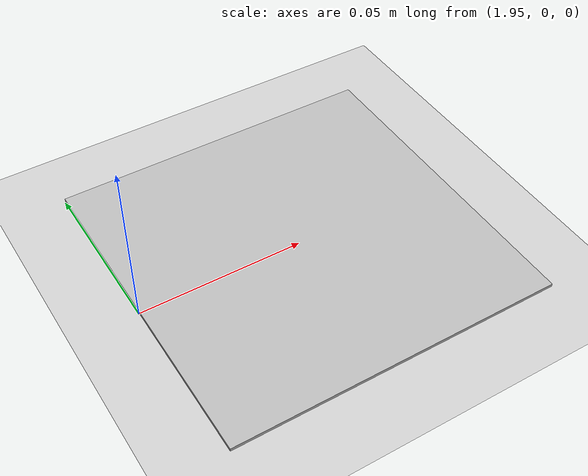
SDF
<?xml version="1.0"?>
<sdf version="1.6">
  <world name="qr_landing">
    <physics name="1ms" type="ignored">
      <max_step_size>0.001</max_step_size>
      <real_time_factor>1.0</real_time_factor>
    </physics>
    <plugin filename="gz-sim-physics-system" name="gz::sim::systems::Physics"/>
    <plugin filename="gz-sim-scene-broadcaster-system" name="gz::sim::systems::SceneBroadcaster"/>
    <plugin filename="gz-sim-user-commands-system" name="gz::sim::systems::UserCommands"/>
    <plugin filename="gz-sim-sensors-system" name="gz::sim::systems::Sensors">
      <render_engine>ogre2</render_engine>
    </plugin>

    <scene>
      <ambient>0.4 0.4 0.4</ambient>
      <background>0.7 0.7 0.7</background>
      <shadows>true</shadows>
    </scene>

    <light type="directional" name="sun">
      <pose>0 0 10 0 0 0</pose>
      <cast_shadows>true</cast_shadows>
      <intensity>1.0</intensity>
      <direction>-0.5 0.1 -0.9</direction>
    </light>

    <model name="ground_plane">
      <static>true</static>
      <link name="link">
        <collision name="collision">
          <geometry>
            <plane>
              <normal>0 0 1</normal>
              <size>100 100</size>
            </plane>
          </geometry>
        </collision>
        <visual name="visual">
          <geometry>
            <plane>
              <normal>0 0 1</normal>
              <size>100 100</size>
            </plane>
          </geometry>
          <material>
            <ambient>0.8 0.8 0.8 1</ambient>
            <diffuse>0.8 0.8 0.8 1</diffuse>
            <specular>0.1 0.1 0.1 1</specular>
          </material>
        </visual>
      </link>
    </model>

    <include>
      <uri>model://aruco_6x6_100mm</uri>
      <pose>2.0 0.0 0.001 0 0 0</pose>
    </include>
  </world>
</sdf>

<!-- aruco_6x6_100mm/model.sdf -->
<sdf version="1.6">
  <model name="aruco_6x6_100mm">
    <static>true</static>
    <link name="link">
      <visual name="visual">
        <geometry>
          <box>
            <size>0.1 0.1 0.001</size>
          </box>
        </geometry>
        <material>
          <script>
            <uri>model://aruco_6x6_100mm/materials/scripts</uri>
            <uri>model://aruco_6x6_100mm/materials/textures</uri>
            <name>Aruco/Marker</name>
          </script>
        </material>
      </visual>
      <collision name="collision">
        <geometry>
          <box>
            <size>0.1 0.1 0.001</size>
          </box>
        </geometry>
      </collision>
    </link>
  </model>
</sdf>
